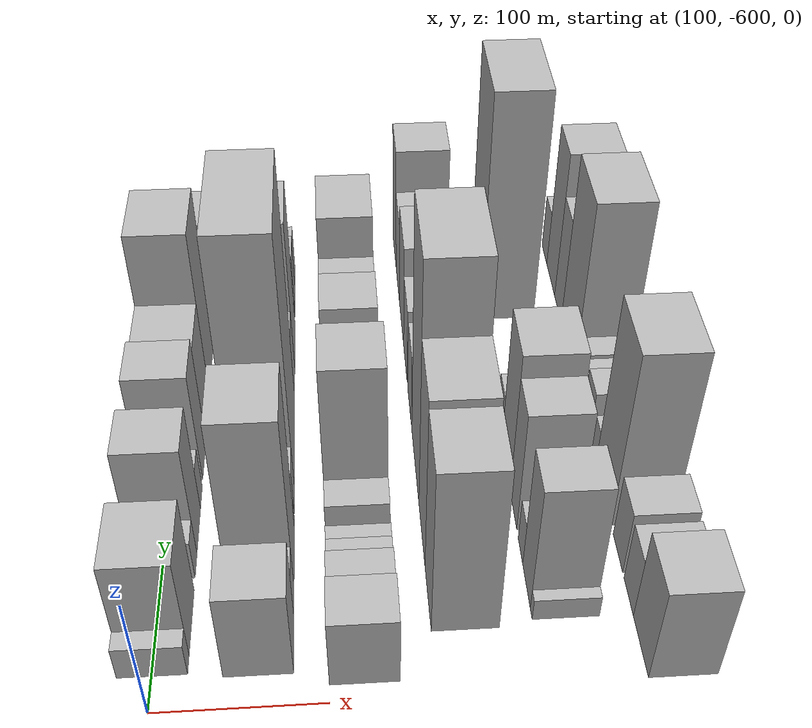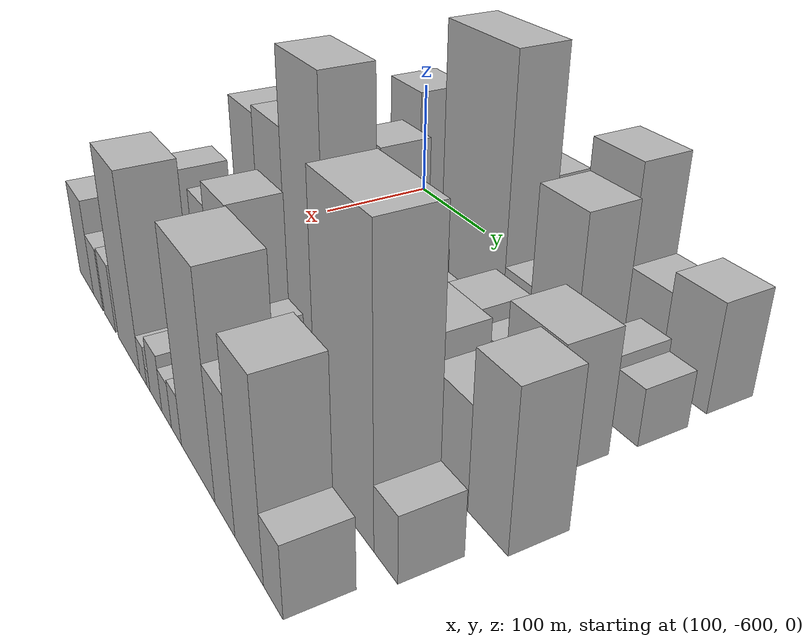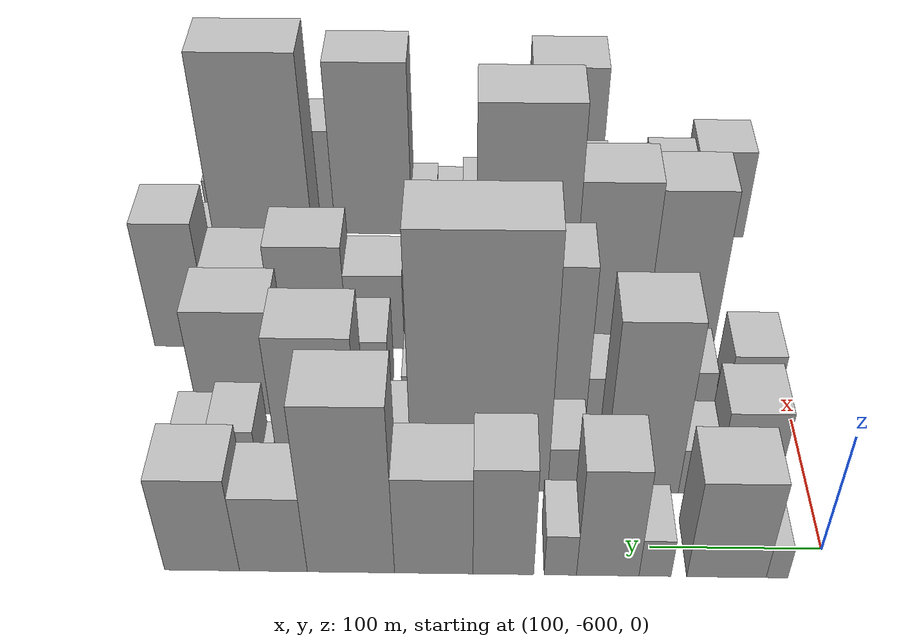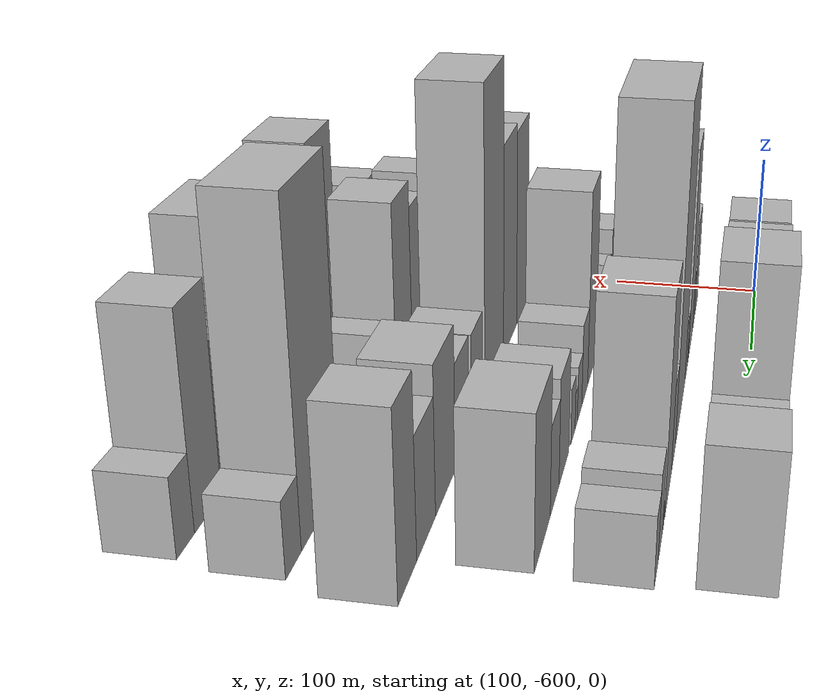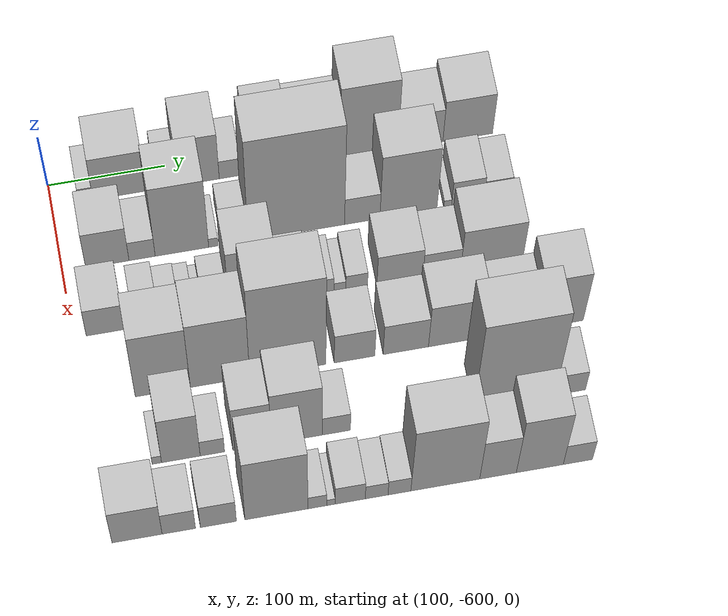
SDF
<sdf version="1.6">
 <world name="default">
  <model name="building_11">
   <static>1</static>
   <pose>100.0000 -570.7395 0 0.000000 0.000000 0.000000</pose>
   <link name="link">
    <pose>0 0 13.50 0 0 0</pose>
    <collision name="collision"><geometry><box><size>40.0000 12.2513 27.0000</size></box></geometry></collision>
    <visual name="visual">
     <cast_shadows>0</cast_shadows>
     <geometry><box><size>40.0000 12.2513 27.0000</size></box></geometry>
     <material>
      <script>
       <uri>model://HANNAS_wall/materials/scripts</uri>
       <uri>model://HANNAS_wall/materials/textures</uri>
       <name>vrc/HANNAS_wall</name>
      </script>
     </material>
    </visual>
   </link>
  </model>
  <model name="building_12">
   <static>1</static>
   <pose>100.0000 -541.9310 0 0.000000 0.000000 0.000000</pose>
   <link name="link">
    <pose>0 0 42.00 0 0 0</pose>
    <collision name="collision"><geometry><box><size>40.0000 45.3656 84.0000</size></box></geometry></collision>
    <visual name="visual">
     <cast_shadows>0</cast_shadows>
     <geometry><box><size>40.0000 45.3656 84.0000</size></box></geometry>
     <material>
      <script>
       <uri>model://HANNAS_wall/materials/scripts</uri>
       <uri>model://HANNAS_wall/materials/textures</uri>
       <name>vrc/HANNAS_wall</name>
      </script>
     </material>
    </visual>
   </link>
  </model>
  <model name="building_13">
   <static>1</static>
   <pose>100.0000 -501.1030 0 0.000000 0.000000 0.000000</pose>
   <link name="link">
    <pose>0 0 16.50 0 0 0</pose>
    <collision name="collision"><geometry><box><size>40.0000 18.2905 33.0000</size></box></geometry></collision>
    <visual name="visual">
     <cast_shadows>0</cast_shadows>
     <geometry><box><size>40.0000 18.2905 33.0000</size></box></geometry>
     <material>
      <script>
       <uri>model://HANNAS_wall/materials/scripts</uri>
       <uri>model://HANNAS_wall/materials/textures</uri>
       <name>vrc/HANNAS_wall</name>
      </script>
     </material>
    </visual>
   </link>
  </model>
  <model name="building_14">
   <static>1</static>
   <pose>100.0000 -474.0762 0 0.000000 0.000000 0.000000</pose>
   <link name="link">
    <pose>0 0 46.50 0 0 0</pose>
    <collision name="collision"><geometry><box><size>40.0000 35.7632 93.0000</size></box></geometry></collision>
    <visual name="visual">
     <cast_shadows>0</cast_shadows>
     <geometry><box><size>40.0000 35.7632 93.0000</size></box></geometry>
     <material>
      <script>
       <uri>model://HANNAS_wall/materials/scripts</uri>
       <uri>model://HANNAS_wall/materials/textures</uri>
       <name>vrc/HANNAS_wall</name>
      </script>
     </material>
    </visual>
   </link>
  </model>
  <model name="building_15">
   <static>1</static>
   <pose>100.0000 -446.9573 0 0.000000 0.000000 0.000000</pose>
   <link name="link">
    <pose>0 0 18.00 0 0 0</pose>
    <collision name="collision"><geometry><box><size>40.0000 18.4745 36.0000</size></box></geometry></collision>
    <visual name="visual">
     <cast_shadows>0</cast_shadows>
     <geometry><box><size>40.0000 18.4745 36.0000</size></box></geometry>
     <material>
      <script>
       <uri>model://HANNAS_wall/materials/scripts</uri>
       <uri>model://HANNAS_wall/materials/textures</uri>
       <name>vrc/HANNAS_wall</name>
      </script>
     </material>
    </visual>
   </link>
  </model>
  <model name="building_16">
   <static>1</static>
   <pose>100.0000 -414.3476 0 0.000000 0.000000 0.000000</pose>
   <link name="link">
    <pose>0 0 46.50 0 0 0</pose>
    <collision name="collision"><geometry><box><size>40.0000 34.7451 93.0000</size></box></geometry></collision>
    <visual name="visual">
     <cast_shadows>0</cast_shadows>
     <geometry><box><size>40.0000 34.7451 93.0000</size></box></geometry>
     <material>
      <script>
       <uri>model://HANNAS_wall/materials/scripts</uri>
       <uri>model://HANNAS_wall/materials/textures</uri>
       <name>vrc/HANNAS_wall</name>
      </script>
     </material>
    </visual>
   </link>
  </model>
  <model name="building_17">
   <static>1</static>
   <pose>100.0000 -374.5045 0 0.000000 0.000000 0.000000</pose>
   <link name="link">
    <pose>0 0 42.00 0 0 0</pose>
    <collision name="collision"><geometry><box><size>40.0000 44.9411 84.0000</size></box></geometry></collision>
    <visual name="visual">
     <cast_shadows>0</cast_shadows>
     <geometry><box><size>40.0000 44.9411 84.0000</size></box></geometry>
     <material>
      <script>
       <uri>model://HANNAS_wall/materials/scripts</uri>
       <uri>model://HANNAS_wall/materials/textures</uri>
       <name>vrc/HANNAS_wall</name>
      </script>
     </material>
    </visual>
   </link>
  </model>
  <model name="building_18">
   <static>1</static>
   <pose>100.0000 -326.9662 0 0.000000 0.000000 0.000000</pose>
   <link name="link">
    <pose>0 0 70.50 0 0 0</pose>
    <collision name="collision"><geometry><box><size>40.0000 50.1355 141.0000</size></box></geometry></collision>
    <visual name="visual">
     <cast_shadows>0</cast_shadows>
     <geometry><box><size>40.0000 50.1355 141.0000</size></box></geometry>
     <material>
      <script>
       <uri>model://HANNAS_wall/materials/scripts</uri>
       <uri>model://HANNAS_wall/materials/textures</uri>
       <name>vrc/HANNAS_wall</name>
      </script>
     </material>
    </visual>
   </link>
  </model>
  <model name="building_19">
   <static>1</static>
   <pose>100.0000 -282.4072 0 0.000000 0.000000 0.000000</pose>
   <link name="link">
    <pose>0 0 33.00 0 0 0</pose>
    <collision name="collision"><geometry><box><size>40.0000 38.9824 66.0000</size></box></geometry></collision>
    <visual name="visual">
     <cast_shadows>0</cast_shadows>
     <geometry><box><size>40.0000 38.9824 66.0000</size></box></geometry>
     <material>
      <script>
       <uri>model://HANNAS_wall/materials/scripts</uri>
       <uri>model://HANNAS_wall/materials/textures</uri>
       <name>vrc/HANNAS_wall</name>
      </script>
     </material>
    </visual>
   </link>
  </model>
  <model name="building_20">
   <static>1</static>
   <pose>100.0000 -241.3646 0 0.000000 0.000000 0.000000</pose>
   <link name="link">
    <pose>0 0 40.50 0 0 0</pose>
    <collision name="collision"><geometry><box><size>40.0000 43.1028 81.0000</size></box></geometry></collision>
    <visual name="visual">
     <cast_shadows>0</cast_shadows>
     <geometry><box><size>40.0000 43.1028 81.0000</size></box></geometry>
     <material>
      <script>
       <uri>model://HANNAS_wall/materials/scripts</uri>
       <uri>model://HANNAS_wall/materials/textures</uri>
       <name>vrc/HANNAS_wall</name>
      </script>
     </material>
    </visual>
   </link>
  </model>
  <model name="building_65">
   <static>1</static>
   <pose>160.0000 -561.5451 0 0.000000 0.000000 0.000000</pose>
   <link name="link">
    <pose>0 0 36.00 0 0 0</pose>
    <collision name="collision"><geometry><box><size>40.0000 36.8331 72.0000</size></box></geometry></collision>
    <visual name="visual">
     <cast_shadows>0</cast_shadows>
     <geometry><box><size>40.0000 36.8331 72.0000</size></box></geometry>
     <material>
      <script>
       <uri>model://HANNAS_wall/materials/scripts</uri>
       <uri>model://HANNAS_wall/materials/textures</uri>
       <name>vrc/HANNAS_wall</name>
      </script>
     </material>
    </visual>
   </link>
  </model>
  <model name="building_66">
   <static>1</static>
   <pose>160.0000 -531.9915 0 0.000000 0.000000 0.000000</pose>
   <link name="link">
    <pose>0 0 19.50 0 0 0</pose>
    <collision name="collision"><geometry><box><size>40.0000 22.2741 39.0000</size></box></geometry></collision>
    <visual name="visual">
     <cast_shadows>0</cast_shadows>
     <geometry><box><size>40.0000 22.2741 39.0000</size></box></geometry>
     <material>
      <script>
       <uri>model://HANNAS_wall/materials/scripts</uri>
       <uri>model://HANNAS_wall/materials/textures</uri>
       <name>vrc/HANNAS_wall</name>
      </script>
     </material>
    </visual>
   </link>
  </model>
  <model name="building_67">
   <static>1</static>
   <pose>160.0000 -498.0781 0 0.000000 0.000000 0.000000</pose>
   <link name="link">
    <pose>0 0 72.00 0 0 0</pose>
    <collision name="collision"><geometry><box><size>40.0000 45.5527 144.0000</size></box></geometry></collision>
    <visual name="visual">
     <cast_shadows>0</cast_shadows>
     <geometry><box><size>40.0000 45.5527 144.0000</size></box></geometry>
     <material>
      <script>
       <uri>model://HANNAS_wall/materials/scripts</uri>
       <uri>model://HANNAS_wall/materials/textures</uri>
       <name>vrc/HANNAS_wall</name>
      </script>
     </material>
    </visual>
   </link>
  </model>
  <model name="building_68">
   <static>1</static>
   <pose>160.0000 -471.2553 0 0.000000 0.000000 0.000000</pose>
   <link name="link">
    <pose>0 0 9.00 0 0 0</pose>
    <collision name="collision"><geometry><box><size>40.0000 8.0928 18.0000</size></box></geometry></collision>
    <visual name="visual">
     <cast_shadows>0</cast_shadows>
     <geometry><box><size>40.0000 8.0928 18.0000</size></box></geometry>
     <material>
      <script>
       <uri>model://HANNAS_wall/materials/scripts</uri>
       <uri>model://HANNAS_wall/materials/textures</uri>
       <name>vrc/HANNAS_wall</name>
      </script>
     </material>
    </visual>
   </link>
  </model>
  <model name="building_69">
   <static>1</static>
   <pose>160.0000 -452.9685 0 0.000000 0.000000 0.000000</pose>
   <link name="link">
    <pose>0 0 19.50 0 0 0</pose>
    <collision name="collision"><geometry><box><size>40.0000 22.4809 39.0000</size></box></geometry></collision>
    <visual name="visual">
     <cast_shadows>0</cast_shadows>
     <geometry><box><size>40.0000 22.4809 39.0000</size></box></geometry>
     <material>
      <script>
       <uri>model://HANNAS_wall/materials/scripts</uri>
       <uri>model://HANNAS_wall/materials/textures</uri>
       <name>vrc/HANNAS_wall</name>
      </script>
     </material>
    </visual>
   </link>
  </model>
  <model name="building_70">
   <static>1</static>
   <pose>160.0000 -400.4646 0 0.000000 0.000000 0.000000</pose>
   <link name="link">
    <pose>0 0 103.50 0 0 0</pose>
    <collision name="collision"><geometry><box><size>40.0000 82.5268 207.0000</size></box></geometry></collision>
    <visual name="visual">
     <cast_shadows>0</cast_shadows>
     <geometry><box><size>40.0000 82.5268 207.0000</size></box></geometry>
     <material>
      <script>
       <uri>model://HANNAS_wall/materials/scripts</uri>
       <uri>model://HANNAS_wall/materials/textures</uri>
       <name>vrc/HANNAS_wall</name>
      </script>
     </material>
    </visual>
   </link>
  </model>
  <model name="building_71">
   <static>1</static>
   <pose>160.0000 -344.0316 0 0.000000 0.000000 0.000000</pose>
   <link name="link">
    <pose>0 0 27.00 0 0 0</pose>
    <collision name="collision"><geometry><box><size>40.0000 30.3391 54.0000</size></box></geometry></collision>
    <visual name="visual">
     <cast_shadows>0</cast_shadows>
     <geometry><box><size>40.0000 30.3391 54.0000</size></box></geometry>
     <material>
      <script>
       <uri>model://HANNAS_wall/materials/scripts</uri>
       <uri>model://HANNAS_wall/materials/textures</uri>
       <name>vrc/HANNAS_wall</name>
      </script>
     </material>
    </visual>
   </link>
  </model>
  <model name="building_72">
   <static>1</static>
   <pose>160.0000 -304.3494 0 0.000000 0.000000 0.000000</pose>
   <link name="link">
    <pose>0 0 64.50 0 0 0</pose>
    <collision name="collision"><geometry><box><size>40.0000 49.0255 129.0000</size></box></geometry></collision>
    <visual name="visual">
     <cast_shadows>0</cast_shadows>
     <geometry><box><size>40.0000 49.0255 129.0000</size></box></geometry>
     <material>
      <script>
       <uri>model://HANNAS_wall/materials/scripts</uri>
       <uri>model://HANNAS_wall/materials/textures</uri>
       <name>vrc/HANNAS_wall</name>
      </script>
     </material>
    </visual>
   </link>
  </model>
  <model name="building_73">
   <static>1</static>
   <pose>160.0000 -270.5381 0 0.000000 0.000000 0.000000</pose>
   <link name="link">
    <pose>0 0 7.50 0 0 0</pose>
    <collision name="collision"><geometry><box><size>40.0000 6.5971 15.0000</size></box></geometry></collision>
    <visual name="visual">
     <cast_shadows>0</cast_shadows>
     <geometry><box><size>40.0000 6.5971 15.0000</size></box></geometry>
     <material>
      <script>
       <uri>model://HANNAS_wall/materials/scripts</uri>
       <uri>model://HANNAS_wall/materials/textures</uri>
       <name>vrc/HANNAS_wall</name>
      </script>
     </material>
    </visual>
   </link>
  </model>
  <model name="building_74">
   <static>1</static>
   <pose>160.0000 -253.3159 0 0.000000 0.000000 0.000000</pose>
   <link name="link">
    <pose>0 0 25.50 0 0 0</pose>
    <collision name="collision"><geometry><box><size>40.0000 27.8474 51.0000</size></box></geometry></collision>
    <visual name="visual">
     <cast_shadows>0</cast_shadows>
     <geometry><box><size>40.0000 27.8474 51.0000</size></box></geometry>
     <material>
      <script>
       <uri>model://HANNAS_wall/materials/scripts</uri>
       <uri>model://HANNAS_wall/materials/textures</uri>
       <name>vrc/HANNAS_wall</name>
      </script>
     </material>
    </visual>
   </link>
  </model>
  <model name="building_75">
   <static>1</static>
   <pose>160.0000 -227.5384 0 0.000000 0.000000 0.000000</pose>
   <link name="link">
    <pose>0 0 21.00 0 0 0</pose>
    <collision name="collision"><geometry><box><size>40.0000 23.7076 42.0000</size></box></geometry></collision>
    <visual name="visual">
     <cast_shadows>0</cast_shadows>
     <geometry><box><size>40.0000 23.7076 42.0000</size></box></geometry>
     <material>
      <script>
       <uri>model://HANNAS_wall/materials/scripts</uri>
       <uri>model://HANNAS_wall/materials/textures</uri>
       <name>vrc/HANNAS_wall</name>
      </script>
     </material>
    </visual>
   </link>
  </model>
  <model name="building_120">
   <static>1</static>
   <pose>220.0000 -572.4841 0 0.000000 0.000000 0.000000</pose>
   <link name="link">
    <pose>0 0 28.50 0 0 0</pose>
    <collision name="collision"><geometry><box><size>40.0000 32.3268 57.0000</size></box></geometry></collision>
    <visual name="visual">
     <cast_shadows>0</cast_shadows>
     <geometry><box><size>40.0000 32.3268 57.0000</size></box></geometry>
     <material>
      <script>
       <uri>model://HANNAS_wall/materials/scripts</uri>
       <uri>model://HANNAS_wall/materials/textures</uri>
       <name>vrc/HANNAS_wall</name>
      </script>
     </material>
    </visual>
   </link>
  </model>
  <model name="building_121">
   <static>1</static>
   <pose>220.0000 -537.6914 0 0.000000 0.000000 0.000000</pose>
   <link name="link">
    <pose>0 0 21.00 0 0 0</pose>
    <collision name="collision"><geometry><box><size>40.0000 21.2585 42.0000</size></box></geometry></collision>
    <visual name="visual">
     <cast_shadows>0</cast_shadows>
     <geometry><box><size>40.0000 21.2585 42.0000</size></box></geometry>
     <material>
      <script>
       <uri>model://HANNAS_wall/materials/scripts</uri>
       <uri>model://HANNAS_wall/materials/textures</uri>
       <name>vrc/HANNAS_wall</name>
      </script>
     </material>
    </visual>
   </link>
  </model>
  <model name="building_122">
   <static>1</static>
   <pose>220.0000 -518.1086 0 0.000000 0.000000 0.000000</pose>
   <link name="link">
    <pose>0 0 15.00 0 0 0</pose>
    <collision name="collision"><geometry><box><size>40.0000 17.9072 30.0000</size></box></geometry></collision>
    <visual name="visual">
     <cast_shadows>0</cast_shadows>
     <geometry><box><size>40.0000 17.9072 30.0000</size></box></geometry>
     <material>
      <script>
       <uri>model://HANNAS_wall/materials/scripts</uri>
       <uri>model://HANNAS_wall/materials/textures</uri>
       <name>vrc/HANNAS_wall</name>
      </script>
     </material>
    </visual>
   </link>
  </model>
  <model name="building_123">
   <static>1</static>
   <pose>220.0000 -503.0272 0 0.000000 0.000000 0.000000</pose>
   <link name="link">
    <pose>0 0 13.50 0 0 0</pose>
    <collision name="collision"><geometry><box><size>40.0000 12.2557 27.0000</size></box></geometry></collision>
    <visual name="visual">
     <cast_shadows>0</cast_shadows>
     <geometry><box><size>40.0000 12.2557 27.0000</size></box></geometry>
     <material>
      <script>
       <uri>model://HANNAS_wall/materials/scripts</uri>
       <uri>model://HANNAS_wall/materials/textures</uri>
       <name>vrc/HANNAS_wall</name>
      </script>
     </material>
    </visual>
   </link>
  </model>
  <model name="building_124">
   <static>1</static>
   <pose>220.0000 -493.2896 0 0.000000 0.000000 0.000000</pose>
   <link name="link">
    <pose>0 0 9.00 0 0 0</pose>
    <collision name="collision"><geometry><box><size>40.0000 7.2194 18.0000</size></box></geometry></collision>
    <visual name="visual">
     <cast_shadows>0</cast_shadows>
     <geometry><box><size>40.0000 7.2194 18.0000</size></box></geometry>
     <material>
      <script>
       <uri>model://HANNAS_wall/materials/scripts</uri>
       <uri>model://HANNAS_wall/materials/textures</uri>
       <name>vrc/HANNAS_wall</name>
      </script>
     </material>
    </visual>
   </link>
  </model>
  <model name="building_125">
   <static>1</static>
   <pose>220.0000 -478.9729 0 0.000000 0.000000 0.000000</pose>
   <link name="link">
    <pose>0 0 18.00 0 0 0</pose>
    <collision name="collision"><geometry><box><size>40.0000 21.4140 36.0000</size></box></geometry></collision>
    <visual name="visual">
     <cast_shadows>0</cast_shadows>
     <geometry><box><size>40.0000 21.4140 36.0000</size></box></geometry>
     <material>
      <script>
       <uri>model://HANNAS_wall/materials/scripts</uri>
       <uri>model://HANNAS_wall/materials/textures</uri>
       <name>vrc/HANNAS_wall</name>
      </script>
     </material>
    </visual>
   </link>
  </model>
  <model name="building_126">
   <static>1</static>
   <pose>220.0000 -448.0472 0 0.000000 0.000000 0.000000</pose>
   <link name="link">
    <pose>0 0 64.50 0 0 0</pose>
    <collision name="collision"><geometry><box><size>40.0000 40.4374 129.0000</size></box></geometry></collision>
    <visual name="visual">
     <cast_shadows>0</cast_shadows>
     <geometry><box><size>40.0000 40.4374 129.0000</size></box></geometry>
     <material>
      <script>
       <uri>model://HANNAS_wall/materials/scripts</uri>
       <uri>model://HANNAS_wall/materials/textures</uri>
       <name>vrc/HANNAS_wall</name>
      </script>
     </material>
    </visual>
   </link>
  </model>
  <model name="building_127">
   <static>1</static>
   <pose>220.0000 -413.7361 0 0.000000 0.000000 0.000000</pose>
   <link name="link">
    <pose>0 0 27.00 0 0 0</pose>
    <collision name="collision"><geometry><box><size>40.0000 28.1848 54.0000</size></box></geometry></collision>
    <visual name="visual">
     <cast_shadows>0</cast_shadows>
     <geometry><box><size>40.0000 28.1848 54.0000</size></box></geometry>
     <material>
      <script>
       <uri>model://HANNAS_wall/materials/scripts</uri>
       <uri>model://HANNAS_wall/materials/textures</uri>
       <name>vrc/HANNAS_wall</name>
      </script>
     </material>
    </visual>
   </link>
  </model>
  <model name="building_128">
   <static>1</static>
   <pose>220.0000 -389.4999 0 0.000000 0.000000 0.000000</pose>
   <link name="link">
    <pose>0 0 18.00 0 0 0</pose>
    <collision name="collision"><geometry><box><size>40.0000 20.2877 36.0000</size></box></geometry></collision>
    <visual name="visual">
     <cast_shadows>0</cast_shadows>
     <geometry><box><size>40.0000 20.2877 36.0000</size></box></geometry>
     <material>
      <script>
       <uri>model://HANNAS_wall/materials/scripts</uri>
       <uri>model://HANNAS_wall/materials/textures</uri>
       <name>vrc/HANNAS_wall</name>
      </script>
     </material>
    </visual>
   </link>
  </model>
  <model name="building_129">
   <static>1</static>
   <pose>220.0000 -374.2634 0 0.000000 0.000000 0.000000</pose>
   <link name="link">
    <pose>0 0 12.00 0 0 0</pose>
    <collision name="collision"><geometry><box><size>40.0000 10.1853 24.0000</size></box></geometry></collision>
    <visual name="visual">
     <cast_shadows>0</cast_shadows>
     <geometry><box><size>40.0000 10.1853 24.0000</size></box></geometry>
     <material>
      <script>
       <uri>model://HANNAS_wall/materials/scripts</uri>
       <uri>model://HANNAS_wall/materials/textures</uri>
       <name>vrc/HANNAS_wall</name>
      </script>
     </material>
    </visual>
   </link>
  </model>
  <model name="building_130">
   <static>1</static>
   <pose>220.0000 -359.9568 0 0.000000 0.000000 0.000000</pose>
   <link name="link">
    <pose>0 0 18.00 0 0 0</pose>
    <collision name="collision"><geometry><box><size>40.0000 18.4278 36.0000</size></box></geometry></collision>
    <visual name="visual">
     <cast_shadows>0</cast_shadows>
     <geometry><box><size>40.0000 18.4278 36.0000</size></box></geometry>
     <material>
      <script>
       <uri>model://HANNAS_wall/materials/scripts</uri>
       <uri>model://HANNAS_wall/materials/textures</uri>
       <name>vrc/HANNAS_wall</name>
      </script>
     </material>
    </visual>
   </link>
  </model>
  <model name="building_131">
   <static>1</static>
   <pose>220.0000 -323.1866 0 0.000000 0.000000 0.000000</pose>
   <link name="link">
    <pose>0 0 33.00 0 0 0</pose>
    <collision name="collision"><geometry><box><size>40.0000 39.1126 66.0000</size></box></geometry></collision>
    <visual name="visual">
     <cast_shadows>0</cast_shadows>
     <geometry><box><size>40.0000 39.1126 66.0000</size></box></geometry>
     <material>
      <script>
       <uri>model://HANNAS_wall/materials/scripts</uri>
       <uri>model://HANNAS_wall/materials/textures</uri>
       <name>vrc/HANNAS_wall</name>
      </script>
     </material>
    </visual>
   </link>
  </model>
  <model name="building_132">
   <static>1</static>
   <pose>220.0000 -287.6200 0 0.000000 0.000000 0.000000</pose>
   <link name="link">
    <pose>0 0 27.00 0 0 0</pose>
    <collision name="collision"><geometry><box><size>40.0000 32.0208 54.0000</size></box></geometry></collision>
    <visual name="visual">
     <cast_shadows>0</cast_shadows>
     <geometry><box><size>40.0000 32.0208 54.0000</size></box></geometry>
     <material>
      <script>
       <uri>model://HANNAS_wall/materials/scripts</uri>
       <uri>model://HANNAS_wall/materials/textures</uri>
       <name>vrc/HANNAS_wall</name>
      </script>
     </material>
    </visual>
   </link>
  </model>
  <model name="building_133">
   <static>1</static>
   <pose>220.0000 -245.0868 0 0.000000 0.000000 0.000000</pose>
   <link name="link">
    <pose>0 0 45.00 0 0 0</pose>
    <collision name="collision"><geometry><box><size>40.0000 53.0455 90.0000</size></box></geometry></collision>
    <visual name="visual">
     <cast_shadows>0</cast_shadows>
     <geometry><box><size>40.0000 53.0455 90.0000</size></box></geometry>
     <material>
      <script>
       <uri>model://HANNAS_wall/materials/scripts</uri>
       <uri>model://HANNAS_wall/materials/textures</uri>
       <name>vrc/HANNAS_wall</name>
      </script>
     </material>
    </visual>
   </link>
  </model>
  <model name="building_177">
   <static>1</static>
   <pose>280.0000 -533.8290 0 0.000000 0.000000 0.000000</pose>
   <link name="link">
    <pose>0 0 69.00 0 0 0</pose>
    <collision name="collision"><geometry><box><size>40.0000 46.1033 138.0000</size></box></geometry></collision>
    <visual name="visual">
     <cast_shadows>0</cast_shadows>
     <geometry><box><size>40.0000 46.1033 138.0000</size></box></geometry>
     <material>
      <script>
       <uri>model://HANNAS_wall/materials/scripts</uri>
       <uri>model://HANNAS_wall/materials/textures</uri>
       <name>vrc/HANNAS_wall</name>
      </script>
     </material>
    </visual>
   </link>
  </model>
  <model name="building_178">
   <static>1</static>
   <pose>280.0000 -485.8958 0 0.000000 0.000000 0.000000</pose>
   <link name="link">
    <pose>0 0 72.00 0 0 0</pose>
    <collision name="collision"><geometry><box><size>40.0000 49.7632 144.0000</size></box></geometry></collision>
    <visual name="visual">
     <cast_shadows>0</cast_shadows>
     <geometry><box><size>40.0000 49.7632 144.0000</size></box></geometry>
     <material>
      <script>
       <uri>model://HANNAS_wall/materials/scripts</uri>
       <uri>model://HANNAS_wall/materials/textures</uri>
       <name>vrc/HANNAS_wall</name>
      </script>
     </material>
    </visual>
   </link>
  </model>
  <model name="building_179">
   <static>1</static>
   <pose>280.0000 -429.0110 0 0.000000 0.000000 0.000000</pose>
   <link name="link">
    <pose>0 0 100.50 0 0 0</pose>
    <collision name="collision"><geometry><box><size>40.0000 64.0063 201.0000</size></box></geometry></collision>
    <visual name="visual">
     <cast_shadows>0</cast_shadows>
     <geometry><box><size>40.0000 64.0063 201.0000</size></box></geometry>
     <material>
      <script>
       <uri>model://HANNAS_wall/materials/scripts</uri>
       <uri>model://HANNAS_wall/materials/textures</uri>
       <name>vrc/HANNAS_wall</name>
      </script>
     </material>
    </visual>
   </link>
  </model>
  <model name="building_180">
   <static>1</static>
   <pose>280.0000 -372.8710 0 0.000000 0.000000 0.000000</pose>
   <link name="link">
    <pose>0 0 31.50 0 0 0</pose>
    <collision name="collision"><geometry><box><size>40.0000 34.2738 63.0000</size></box></geometry></collision>
    <visual name="visual">
     <cast_shadows>0</cast_shadows>
     <geometry><box><size>40.0000 34.2738 63.0000</size></box></geometry>
     <material>
      <script>
       <uri>model://HANNAS_wall/materials/scripts</uri>
       <uri>model://HANNAS_wall/materials/textures</uri>
       <name>vrc/HANNAS_wall</name>
      </script>
     </material>
    </visual>
   </link>
  </model>
  <model name="building_181">
   <static>1</static>
   <pose>280.0000 -329.5836 0 0.000000 0.000000 0.000000</pose>
   <link name="link">
    <pose>0 0 33.00 0 0 0</pose>
    <collision name="collision"><geometry><box><size>40.0000 38.3008 66.0000</size></box></geometry></collision>
    <visual name="visual">
     <cast_shadows>0</cast_shadows>
     <geometry><box><size>40.0000 38.3008 66.0000</size></box></geometry>
     <material>
      <script>
       <uri>model://HANNAS_wall/materials/scripts</uri>
       <uri>model://HANNAS_wall/materials/textures</uri>
       <name>vrc/HANNAS_wall</name>
      </script>
     </material>
    </visual>
   </link>
  </model>
  <model name="building_182">
   <static>1</static>
   <pose>280.0000 -285.4587 0 0.000000 0.000000 0.000000</pose>
   <link name="link">
    <pose>0 0 45.00 0 0 0</pose>
    <collision name="collision"><geometry><box><size>40.0000 49.9489 90.0000</size></box></geometry></collision>
    <visual name="visual">
     <cast_shadows>0</cast_shadows>
     <geometry><box><size>40.0000 49.9489 90.0000</size></box></geometry>
     <material>
      <script>
       <uri>model://HANNAS_wall/materials/scripts</uri>
       <uri>model://HANNAS_wall/materials/textures</uri>
       <name>vrc/HANNAS_wall</name>
      </script>
     </material>
    </visual>
   </link>
  </model>
  <model name="building_183">
   <static>1</static>
   <pose>280.0000 -239.1614 0 0.000000 0.000000 0.000000</pose>
   <link name="link">
    <pose>0 0 36.00 0 0 0</pose>
    <collision name="collision"><geometry><box><size>40.0000 42.6457 72.0000</size></box></geometry></collision>
    <visual name="visual">
     <cast_shadows>0</cast_shadows>
     <geometry><box><size>40.0000 42.6457 72.0000</size></box></geometry>
     <material>
      <script>
       <uri>model://HANNAS_wall/materials/scripts</uri>
       <uri>model://HANNAS_wall/materials/textures</uri>
       <name>vrc/HANNAS_wall</name>
      </script>
     </material>
    </visual>
   </link>
  </model>
  <model name="building_184">
   <static>1</static>
   <pose>280.0000 -198.4694 0 0.000000 0.000000 0.000000</pose>
   <link name="link">
    <pose>0 0 54.00 0 0 0</pose>
    <collision name="collision"><geometry><box><size>40.0000 38.7384 108.0000</size></box></geometry></collision>
    <visual name="visual">
     <cast_shadows>0</cast_shadows>
     <geometry><box><size>40.0000 38.7384 108.0000</size></box></geometry>
     <material>
      <script>
       <uri>model://HANNAS_wall/materials/scripts</uri>
       <uri>model://HANNAS_wall/materials/textures</uri>
       <name>vrc/HANNAS_wall</name>
      </script>
     </material>
    </visual>
   </link>
  </model>
  <model name="building_227">
   <static>1</static>
   <pose>340.0000 -548.5276 0 0.000000 0.000000 0.000000</pose>
   <link name="link">
    <pose>0 0 9.00 0 0 0</pose>
    <collision name="collision"><geometry><box><size>40.0000 7.8231 18.0000</size></box></geometry></collision>
    <visual name="visual">
     <cast_shadows>0</cast_shadows>
     <geometry><box><size>40.0000 7.8231 18.0000</size></box></geometry>
     <material>
      <script>
       <uri>model://HANNAS_wall/materials/scripts</uri>
       <uri>model://HANNAS_wall/materials/textures</uri>
       <name>vrc/HANNAS_wall</name>
      </script>
     </material>
    </visual>
   </link>
  </model>
  <model name="building_228">
   <static>1</static>
   <pose>340.0000 -528.5743 0 0.000000 0.000000 0.000000</pose>
   <link name="link">
    <pose>0 0 52.50 0 0 0</pose>
    <collision name="collision"><geometry><box><size>40.0000 32.0837 105.0000</size></box></geometry></collision>
    <visual name="visual">
     <cast_shadows>0</cast_shadows>
     <geometry><box><size>40.0000 32.0837 105.0000</size></box></geometry>
     <material>
      <script>
       <uri>model://HANNAS_wall/materials/scripts</uri>
       <uri>model://HANNAS_wall/materials/textures</uri>
       <name>vrc/HANNAS_wall</name>
      </script>
     </material>
    </visual>
   </link>
  </model>
  <model name="building_229">
   <static>1</static>
   <pose>340.0000 -502.4227 0 0.000000 0.000000 0.000000</pose>
   <link name="link">
    <pose>0 0 18.00 0 0 0</pose>
    <collision name="collision"><geometry><box><size>40.0000 20.2194 36.0000</size></box></geometry></collision>
    <visual name="visual">
     <cast_shadows>0</cast_shadows>
     <geometry><box><size>40.0000 20.2194 36.0000</size></box></geometry>
     <material>
      <script>
       <uri>model://HANNAS_wall/materials/scripts</uri>
       <uri>model://HANNAS_wall/materials/textures</uri>
       <name>vrc/HANNAS_wall</name>
      </script>
     </material>
    </visual>
   </link>
  </model>
  <model name="building_230">
   <static>1</static>
   <pose>340.0000 -469.5578 0 0.000000 0.000000 0.000000</pose>
   <link name="link">
    <pose>0 0 51.00 0 0 0</pose>
    <collision name="collision"><geometry><box><size>40.0000 31.5105 102.0000</size></box></geometry></collision>
    <visual name="visual">
     <cast_shadows>0</cast_shadows>
     <geometry><box><size>40.0000 31.5105 102.0000</size></box></geometry>
     <material>
      <script>
       <uri>model://HANNAS_wall/materials/scripts</uri>
       <uri>model://HANNAS_wall/materials/textures</uri>
       <name>vrc/HANNAS_wall</name>
      </script>
     </material>
    </visual>
   </link>
  </model>
  <model name="building_231">
   <static>1</static>
   <pose>340.0000 -432.4018 0 0.000000 0.000000 0.000000</pose>
   <link name="link">
    <pose>0 0 60.00 0 0 0</pose>
    <collision name="collision"><geometry><box><size>40.0000 42.8014 120.0000</size></box></geometry></collision>
    <visual name="visual">
     <cast_shadows>0</cast_shadows>
     <geometry><box><size>40.0000 42.8014 120.0000</size></box></geometry>
     <material>
      <script>
       <uri>model://HANNAS_wall/materials/scripts</uri>
       <uri>model://HANNAS_wall/materials/textures</uri>
       <name>vrc/HANNAS_wall</name>
      </script>
     </material>
    </visual>
   </link>
  </model>
  <model name="building_232">
   <static>1</static>
   <pose>340.0000 -399.2310 0 0.000000 0.000000 0.000000</pose>
   <link name="link">
    <pose>0 0 21.00 0 0 0</pose>
    <collision name="collision"><geometry><box><size>40.0000 23.5403 42.0000</size></box></geometry></collision>
    <visual name="visual">
     <cast_shadows>0</cast_shadows>
     <geometry><box><size>40.0000 23.5403 42.0000</size></box></geometry>
     <material>
      <script>
       <uri>model://HANNAS_wall/materials/scripts</uri>
       <uri>model://HANNAS_wall/materials/textures</uri>
       <name>vrc/HANNAS_wall</name>
      </script>
     </material>
    </visual>
   </link>
  </model>
  <model name="building_233">
   <static>1</static>
   <pose>340.0000 -249.7678 0 0.000000 0.000000 0.000000</pose>
   <link name="link">
    <pose>0 0 97.50 0 0 0</pose>
    <collision name="collision"><geometry><box><size>40.0000 68.4620 195.0000</size></box></geometry></collision>
    <visual name="visual">
     <cast_shadows>0</cast_shadows>
     <geometry><box><size>40.0000 68.4620 195.0000</size></box></geometry>
     <material>
      <script>
       <uri>model://HANNAS_wall/materials/scripts</uri>
       <uri>model://HANNAS_wall/materials/textures</uri>
       <name>vrc/HANNAS_wall</name>
      </script>
     </material>
    </visual>
   </link>
  </model>
  <model name="building_234">
   <static>1</static>
   <pose>340.0000 -202.7642 0 0.000000 0.000000 0.000000</pose>
   <link name="link">
    <pose>0 0 22.50 0 0 0</pose>
    <collision name="collision"><geometry><box><size>40.0000 25.5454 45.0000</size></box></geometry></collision>
    <visual name="visual">
     <cast_shadows>0</cast_shadows>
     <geometry><box><size>40.0000 25.5454 45.0000</size></box></geometry>
     <material>
      <script>
       <uri>model://HANNAS_wall/materials/scripts</uri>
       <uri>model://HANNAS_wall/materials/textures</uri>
       <name>vrc/HANNAS_wall</name>
      </script>
     </material>
    </visual>
   </link>
  </model>
  <model name="building_275">
   <static>1</static>
   <pose>400.0000 -574.4623 0 0.000000 0.000000 0.000000</pose>
   <link name="link">
    <pose>0 0 39.00 0 0 0</pose>
    <collision name="collision"><geometry><box><size>40.0000 41.1690 78.0000</size></box></geometry></collision>
    <visual name="visual">
     <cast_shadows>0</cast_shadows>
     <geometry><box><size>40.0000 41.1690 78.0000</size></box></geometry>
     <material>
      <script>
       <uri>model://HANNAS_wall/materials/scripts</uri>
       <uri>model://HANNAS_wall/materials/textures</uri>
       <name>vrc/HANNAS_wall</name>
      </script>
     </material>
    </visual>
   </link>
  </model>
  <model name="building_276">
   <static>1</static>
   <pose>400.0000 -540.1373 0 0.000000 0.000000 0.000000</pose>
   <link name="link">
    <pose>0 0 25.50 0 0 0</pose>
    <collision name="collision"><geometry><box><size>40.0000 27.4809 51.0000</size></box></geometry></collision>
    <visual name="visual">
     <cast_shadows>0</cast_shadows>
     <geometry><box><size>40.0000 27.4809 51.0000</size></box></geometry>
     <material>
      <script>
       <uri>model://HANNAS_wall/materials/scripts</uri>
       <uri>model://HANNAS_wall/materials/textures</uri>
       <name>vrc/HANNAS_wall</name>
      </script>
     </material>
    </visual>
   </link>
  </model>
  <model name="building_277">
   <static>1</static>
   <pose>400.0000 -507.5633 0 0.000000 0.000000 0.000000</pose>
   <link name="link">
    <pose>0 0 27.00 0 0 0</pose>
    <collision name="collision"><geometry><box><size>40.0000 29.6671 54.0000</size></box></geometry></collision>
    <visual name="visual">
     <cast_shadows>0</cast_shadows>
     <geometry><box><size>40.0000 29.6671 54.0000</size></box></geometry>
     <material>
      <script>
       <uri>model://HANNAS_wall/materials/scripts</uri>
       <uri>model://HANNAS_wall/materials/textures</uri>
       <name>vrc/HANNAS_wall</name>
      </script>
     </material>
    </visual>
   </link>
  </model>
  <model name="building_278">
   <static>1</static>
   <pose>400.0000 -459.7409 0 0.000000 0.000000 0.000000</pose>
   <link name="link">
    <pose>0 0 73.50 0 0 0</pose>
    <collision name="collision"><geometry><box><size>40.0000 51.9777 147.0000</size></box></geometry></collision>
    <visual name="visual">
     <cast_shadows>0</cast_shadows>
     <geometry><box><size>40.0000 51.9777 147.0000</size></box></geometry>
     <material>
      <script>
       <uri>model://HANNAS_wall/materials/scripts</uri>
       <uri>model://HANNAS_wall/materials/textures</uri>
       <name>vrc/HANNAS_wall</name>
      </script>
     </material>
    </visual>
   </link>
  </model>
  <model name="building_279">
   <static>1</static>
   <pose>400.0000 -425.9693 0 0.000000 0.000000 0.000000</pose>
   <link name="link">
    <pose>0 0 15.00 0 0 0</pose>
    <collision name="collision"><geometry><box><size>40.0000 15.5655 30.0000</size></box></geometry></collision>
    <visual name="visual">
     <cast_shadows>0</cast_shadows>
     <geometry><box><size>40.0000 15.5655 30.0000</size></box></geometry>
     <material>
      <script>
       <uri>model://HANNAS_wall/materials/scripts</uri>
       <uri>model://HANNAS_wall/materials/textures</uri>
       <name>vrc/HANNAS_wall</name>
      </script>
     </material>
    </visual>
   </link>
  </model>
  <model name="building_280">
   <static>1</static>
   <pose>400.0000 -414.6765 0 0.000000 0.000000 0.000000</pose>
   <link name="link">
    <pose>0 0 7.50 0 0 0</pose>
    <collision name="collision"><geometry><box><size>40.0000 7.0202 15.0000</size></box></geometry></collision>
    <visual name="visual">
     <cast_shadows>0</cast_shadows>
     <geometry><box><size>40.0000 7.0202 15.0000</size></box></geometry>
     <material>
      <script>
       <uri>model://HANNAS_wall/materials/scripts</uri>
       <uri>model://HANNAS_wall/materials/textures</uri>
       <name>vrc/HANNAS_wall</name>
      </script>
     </material>
    </visual>
   </link>
  </model>
  <model name="building_281">
   <static>1</static>
   <pose>400.0000 -398.6899 0 0.000000 0.000000 0.000000</pose>
   <link name="link">
    <pose>0 0 21.00 0 0 0</pose>
    <collision name="collision"><geometry><box><size>40.0000 24.9530 42.0000</size></box></geometry></collision>
    <visual name="visual">
     <cast_shadows>0</cast_shadows>
     <geometry><box><size>40.0000 24.9530 42.0000</size></box></geometry>
     <material>
      <script>
       <uri>model://HANNAS_wall/materials/scripts</uri>
       <uri>model://HANNAS_wall/materials/textures</uri>
       <name>vrc/HANNAS_wall</name>
      </script>
     </material>
    </visual>
   </link>
  </model>
  <model name="building_282">
   <static>1</static>
   <pose>400.0000 -376.7767 0 0.000000 0.000000 0.000000</pose>
   <link name="link">
    <pose>0 0 16.50 0 0 0</pose>
    <collision name="collision"><geometry><box><size>40.0000 18.8734 33.0000</size></box></geometry></collision>
    <visual name="visual">
     <cast_shadows>0</cast_shadows>
     <geometry><box><size>40.0000 18.8734 33.0000</size></box></geometry>
     <material>
      <script>
       <uri>model://HANNAS_wall/materials/scripts</uri>
       <uri>model://HANNAS_wall/materials/textures</uri>
       <name>vrc/HANNAS_wall</name>
      </script>
     </material>
    </visual>
   </link>
  </model>
  <model name="building_283">
   <static>1</static>
   <pose>400.0000 -357.8591 0 0.000000 0.000000 0.000000</pose>
   <link name="link">
    <pose>0 0 18.00 0 0 0</pose>
    <collision name="collision"><geometry><box><size>40.0000 18.9618 36.0000</size></box></geometry></collision>
    <visual name="visual">
     <cast_shadows>0</cast_shadows>
     <geometry><box><size>40.0000 18.9618 36.0000</size></box></geometry>
     <material>
      <script>
       <uri>model://HANNAS_wall/materials/scripts</uri>
       <uri>model://HANNAS_wall/materials/textures</uri>
       <name>vrc/HANNAS_wall</name>
      </script>
     </material>
    </visual>
   </link>
  </model>
  <model name="building_284">
   <static>1</static>
   <pose>400.0000 -319.7337 0 0.000000 0.000000 0.000000</pose>
   <link name="link">
    <pose>0 0 75.00 0 0 0</pose>
    <collision name="collision"><geometry><box><size>40.0000 57.2889 150.0000</size></box></geometry></collision>
    <visual name="visual">
     <cast_shadows>0</cast_shadows>
     <geometry><box><size>40.0000 57.2889 150.0000</size></box></geometry>
     <material>
      <script>
       <uri>model://HANNAS_wall/materials/scripts</uri>
       <uri>model://HANNAS_wall/materials/textures</uri>
       <name>vrc/HANNAS_wall</name>
      </script>
     </material>
    </visual>
   </link>
  </model>
  <model name="building_285">
   <static>1</static>
   <pose>400.0000 -275.8230 0 0.000000 0.000000 0.000000</pose>
   <link name="link">
    <pose>0 0 46.50 0 0 0</pose>
    <collision name="collision"><geometry><box><size>40.0000 30.5324 93.0000</size></box></geometry></collision>
    <visual name="visual">
     <cast_shadows>0</cast_shadows>
     <geometry><box><size>40.0000 30.5324 93.0000</size></box></geometry>
     <material>
      <script>
       <uri>model://HANNAS_wall/materials/scripts</uri>
       <uri>model://HANNAS_wall/materials/textures</uri>
       <name>vrc/HANNAS_wall</name>
      </script>
     </material>
    </visual>
   </link>
  </model>
  <model name="building_286">
   <static>1</static>
   <pose>400.0000 -240.9603 0 0.000000 0.000000 0.000000</pose>
   <link name="link">
    <pose>0 0 64.50 0 0 0</pose>
    <collision name="collision"><geometry><box><size>40.0000 39.1930 129.0000</size></box></geometry></collision>
    <visual name="visual">
     <cast_shadows>0</cast_shadows>
     <geometry><box><size>40.0000 39.1930 129.0000</size></box></geometry>
     <material>
      <script>
       <uri>model://HANNAS_wall/materials/scripts</uri>
       <uri>model://HANNAS_wall/materials/textures</uri>
       <name>vrc/HANNAS_wall</name>
      </script>
     </material>
    </visual>
   </link>
  </model>
  <model name="building_287">
   <static>1</static>
   <pose>400.0000 -209.1411 0 0.000000 0.000000 0.000000</pose>
   <link name="link">
    <pose>0 0 24.00 0 0 0</pose>
    <collision name="collision"><geometry><box><size>40.0000 24.4455 48.0000</size></box></geometry></collision>
    <visual name="visual">
     <cast_shadows>0</cast_shadows>
     <geometry><box><size>40.0000 24.4455 48.0000</size></box></geometry>
     <material>
      <script>
       <uri>model://HANNAS_wall/materials/scripts</uri>
       <uri>model://HANNAS_wall/materials/textures</uri>
       <name>vrc/HANNAS_wall</name>
      </script>
     </material>
    </visual>
   </link>
  </model>
 </world>
</sdf>
